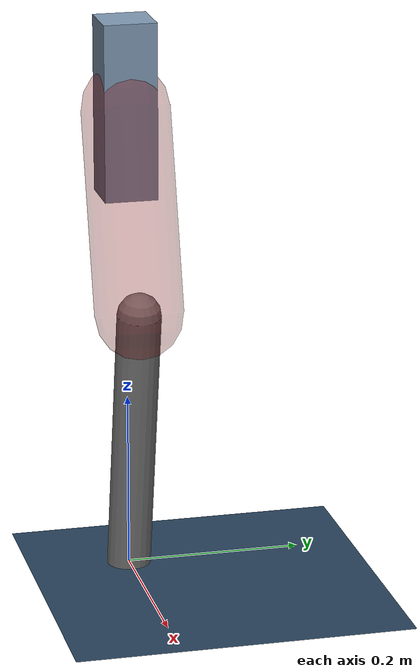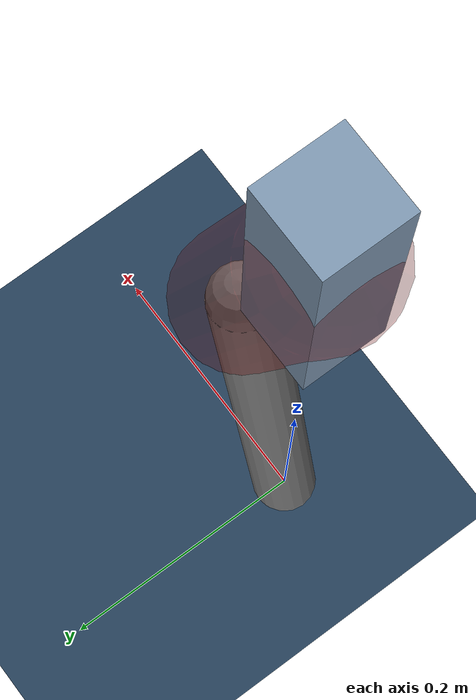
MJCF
<mujoco model="Hopper2D">
	<compiler inertiafromgeom="true" angle="radian" />
	<option timestep="0.001" integrator="implicit" cone="elliptic" solver="Newton" tolerance="1e-10" />

	<default>
		<geom contype="1" conaffinity="1" condim="3" friction="2 0.005 0.0001" solref="0.005 1" />
		<joint limited="true" damping="0.1" />
	</default>

	<asset>
		<texture name="skybox" type="skybox" builtin="gradient" rgb1=".4 .6 .8" rgb2="0 0 0" width="800" height="800" />
		<texture name="grid" type="2d" builtin="checker" rgb1=".1 .2 .3" rgb2=".2 .3 .4" width="300" height="300" mark="edge" markrgb=".2 .3 .4" />
		<material name="ground" texture="grid" texrepeat="1 1" texuniform="true" reflectance="0.1" />
		<material name="leg" rgba="0.5 0.6 0.7 1" />
	</asset>

	<worldbody>

		<geom name="floor" type="plane" size="5 5 0.25" material="ground" />

		<light directional="false" diffuse="0.8 0.8 0.8" specular="0.3 0.3 0.3" pos="0 0 2" dir="0 0 -1" />
		<light mode="targetbodycom" target="base" directional="false" diffuse="0.8 0.8 0.8" specular="0.3 0.3 0.3" pos="0 0 2" dir="0 0 -1" />

		<camera name="fixed" pos="0 -2 1" xyaxes="1 0 0 0 0 1" />
		<camera name="tracking" mode="trackcom" pos="0 -3 1" />

		<body name="root" pos="0 0 0.5391933638451171">
			<joint name="slide_x" type="slide" axis="1 0 0" range="-100 100" />
			<joint name="slide_z" type="slide" axis="0 0 1" range="0 10" />

			<body name="base" pos="0 0 0">
				<geom name="torso" type="box" size="0.03 0.03 0.1" mass="2.35" material="leg" />

				<body name="link1" pos="0 0 0" euler="0 1.2879573351736808 0">
					<joint type="hinge" axis="0 -1 0" pos="0 0 0" name="hinge1" limited="true" range="-3.14 3.14" stiffness="0" damping="0.1" />
					<geom name="thigh" type="capsule" fromto="0 0 0 0.2300802729425999 0 0" size="0.05" rgba="0.5 0 0 0.3" mass="0.8052087096507597" />

					<body name="link2" pos="0.2300802729425999 0 0" euler="0 0.481927434152506 0">
						<joint type="hinge" axis="0 -1 0" pos="0 0 0" name="hinge2" limited="true" range="-3.14 3.14" stiffness="0" damping="0.1" />
						<geom name="shank" type="capsule" fromto="0 0 0 0.32466795017496614 0 0" size="0.025" mass="0.5034343601399729" />

					</body>
				</body>
			</body>
		</body>
	</worldbody>

	<actuator>
		<motor name="torque1" joint="hinge1" ctrlrange="-50.8270436944404 50.8270436944404" ctrllimited="true" gear="1" />
		<motor name="torque2" joint="hinge2" ctrlrange="-75.67793986970298 75.67793986970298" ctrllimited="true" gear="1" />
	</actuator>
</mujoco>
